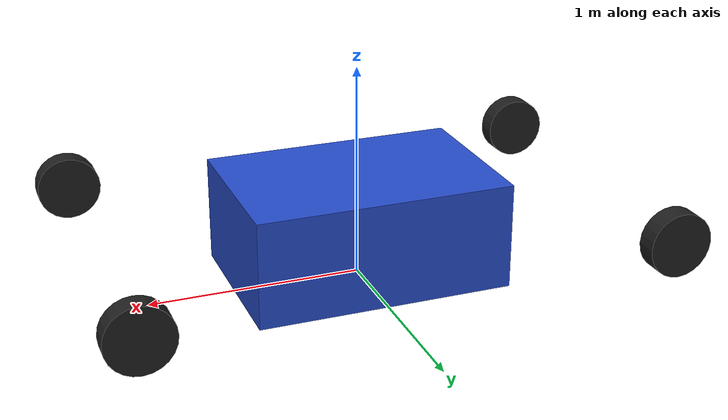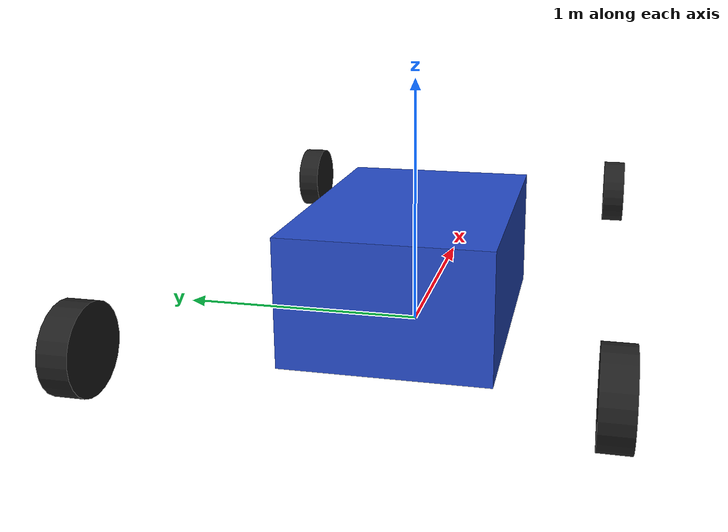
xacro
<?xml version="1.0"?>
<robot xmlns:xacro="http://www.ros.org/wiki/xacro">

    <xacro:include filename="colours.xacro"/>

    <!-- Base Link -->
    <link name="base_link">
    <visual>
        <geometry>
        <box size="1.2 0.8 0.5"/>
        </geometry>
        <origin xyz="0 0 0.25" rpy="0 0 0"/>
        <material name="blue"/>
    </visual>
    <collision>
        <geometry>
        <box size="1.2 0.8 0.5"/>
        </geometry>
        <origin xyz="0 0 0.25" rpy="0 0 0"/>
    </collision>
    <inertial>
        <mass value="50.0"/>
        <origin xyz="0 0 0.25" rpy="0 0 0"/>
        <inertia ixx="5.0" ixy="0.0" ixz="0.0" iyy="5.0" iyz="0.0" izz="5.0"/>
    </inertial>
    </link>

    <!-- Front Left Wheel -->
    <link name="front_left_wheel">
    <visual>
        <geometry>
        <cylinder radius="0.15" length="0.1"/>
        </geometry>
        <origin xyz="0.6 0.4 0.15" rpy="-${pi/2} 0 0"/>
        <material name="black"/>
    </visual>
    <collision>
        <geometry>
        <cylinder radius="0.15" length="0.1"/>
        </geometry>
        <origin xyz="0.6 0.4 0.15" rpy="-${pi/2} 0 0"/>
    </collision>
    </link>

    <!-- Front Right Wheel -->
    <link name="front_right_wheel">
    <visual>
        <geometry>
        <cylinder radius="0.15" length="0.1"/>
        </geometry>
        <origin xyz="0.6 -0.4 0.15" rpy="${pi/2} 0 0"/>
        <material name="black"/>
    </visual>
    <collision>
        <geometry>
        <cylinder radius="0.15" length="0.1"/>
        </geometry>
        <origin xyz="0.6 -0.4 0.15" rpy="${pi/2} 0 0"/>
    </collision>
    </link>

  <!-- Rear Left Wheel -->
  <link name="rear_left_wheel">
    <visual>
      <geometry>
        <cylinder radius="0.15" length="0.1"/>
      </geometry>
      <origin xyz="-0.6 0.4 0.15" rpy="-${pi/2} 0 0"/>
      <material name="black"/>
    </visual>
    <collision>
      <geometry>
        <cylinder radius="0.15" length="0.1"/>
      </geometry>
      <origin xyz="-0.6 0.4 0.15" rpy="-${pi/2} 0 0"/>
    </collision>
  </link>

  <!-- Rear Right Wheel -->
  <link name="rear_right_wheel">
    <visual>
      <geometry>
        <cylinder radius="0.15" length="0.1"/>
      </geometry>
      <origin xyz="-0.6 -0.4 0.15" rpy="${pi/2} 0 0"/>
      <material name="black"/>
    </visual>
    <collision>
      <geometry>
        <cylinder radius="0.15" length="0.1"/>
      </geometry>
      <origin xyz="-0.6 -0.4 0.15" rpy="${pi/2} 0 0"/>
    </collision>
  </link>

  <!-- Front Left Steering Joint -->
  <joint name="front_left_steer_joint" type="revolute">
    <parent link="base_link"/>
    <child link="front_left_wheel"/>
    <origin xyz="0.6 0.4 0.15" rpy="0 0 0"/>
    <axis xyz="0 0 1"/>
    <limit lower="-0.5" upper="0.5" effort="10.0" velocity="1.0"/>
  </joint>

  <!-- Front Right Steering Joint -->
  <joint name="front_right_steer_joint" type="revolute">
    <parent link="base_link"/>
    <child link="front_right_wheel"/>
    <origin xyz="0.6 -0.4 0.15" rpy="0 0 0"/>
    <axis xyz="0 0 1"/>
    <limit lower="-0.5" upper="0.5" effort="10.0" velocity="1.0"/>
  </joint>

  <!-- Rear Left Fixed Joint -->
  <joint name="rear_left_wheel_joint" type="fixed">
    <parent link="base_link"/>
    <child link="rear_left_wheel"/>
    <origin xyz="-0.6 0.4 0.15" rpy="0 0 0"/>
  </joint>

  <!-- Rear Right Fixed Joint -->
  <joint name="rear_right_wheel_joint" type="fixed">
    <parent link="base_link"/>
    <child link="rear_right_wheel"/>
    <origin xyz="-0.6 -0.4 0.15" rpy="0 0 0"/>
  </joint>
</robot>
